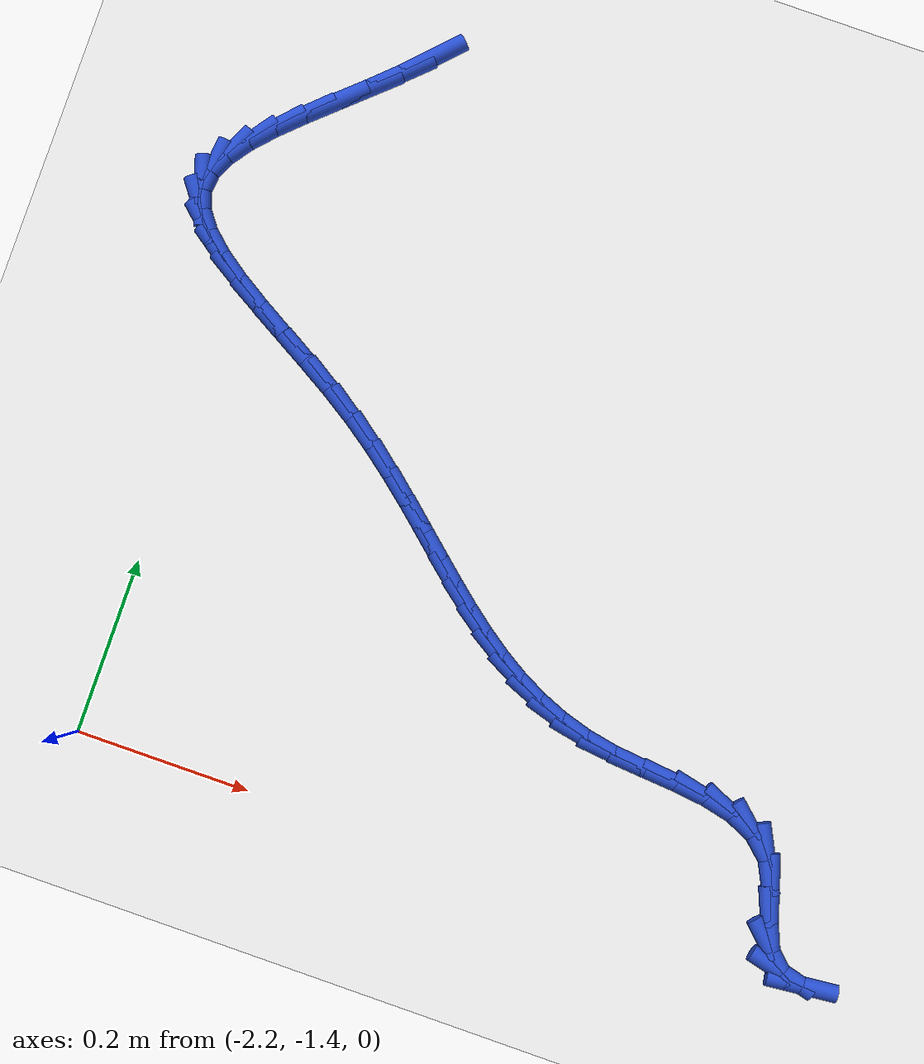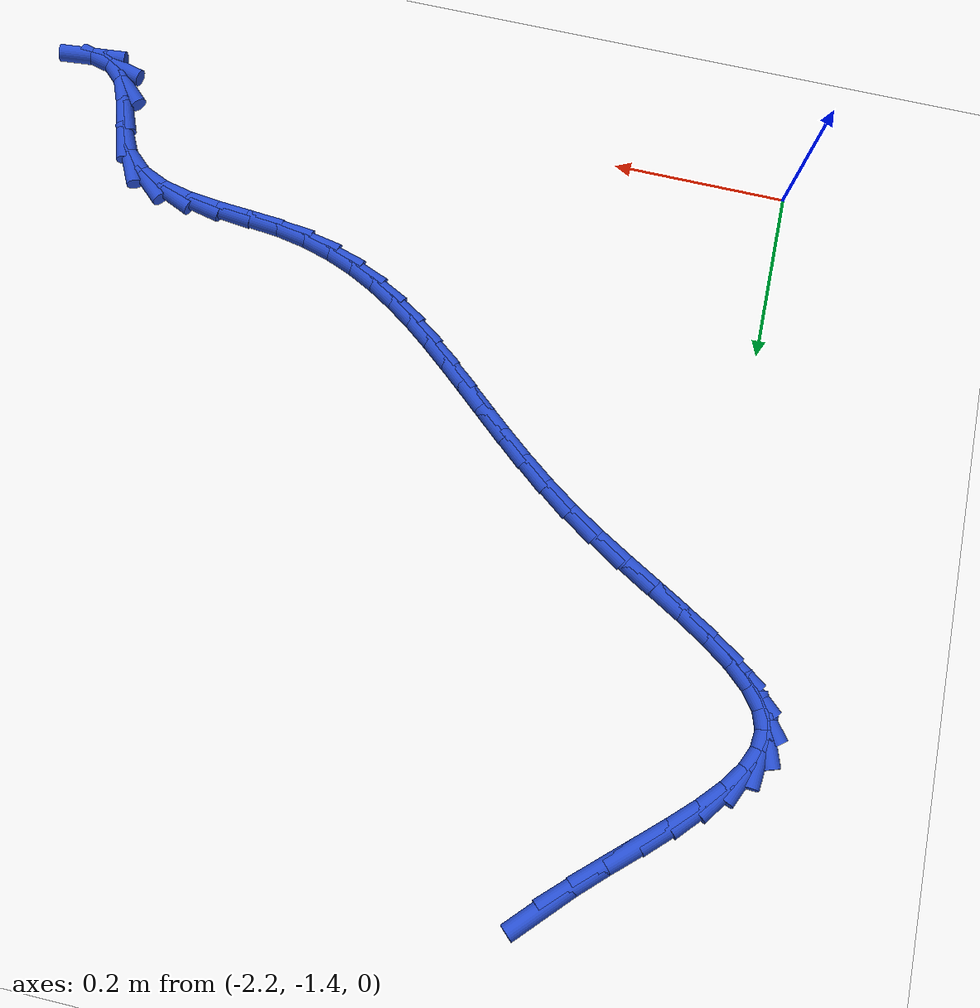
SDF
<sdf version="1.6">
 <world name="default">
  <model name="ground_plane">
   <static>1</static>
   <link name="link">
    <collision name="collision">
     <geometry><plane><normal>0 0 1</normal><size>100 100</size></plane></geometry>
     <surface><friction><ode><mu>100</mu><mu2>50</mu2></ode></friction></surface>
    </collision>
    <visual name="visual">
     <cast_shadows>0</cast_shadows>
     <geometry><plane><normal>0 0 1</normal><size>100 100</size></plane></geometry>
     <material>
      <script><uri>file://media/materials/scripts/gazebo.material</uri><name>Gazebo/WhiteGlow</name></script>
     </material>
    </visual>
   </link>
  </model>
  <model name="line">
   <link name="link_155">
    <pose>-2.0775299992769973 -0.5603262600297172 0.01 0 1.57 0.8064701238069668</pose>
    <collision name="collision">
     <geometry><cylinder><radius>0.01</radius><length>0.08</length></cylinder></geometry>
    </collision>
    <visual name="visual">
     <material>
      <script><name>Gazebo/Blue</name><uri>file://media/materials/scripts/gazebo.material</uri></script>
     </material>
     <geometry><cylinder><radius>0.01</radius><length>0.08</length></cylinder></geometry>
    </visual>
   </link>
   <link name="link_156">
    <pose>-2.1049394615594754 -0.588915908030535 0.01 0 1.57 0.7580136899996742</pose>
    <collision name="collision">
     <geometry><cylinder><radius>0.01</radius><length>0.08</length></cylinder></geometry>
    </collision>
    <visual name="visual">
     <material>
      <script><name>Gazebo/Blue</name><uri>file://media/materials/scripts/gazebo.material</uri></script>
     </material>
     <geometry><cylinder><radius>0.01</radius><length>0.08</length></cylinder></geometry>
    </visual>
   </link>
   <link name="link_157">
    <pose>-2.134192705329828 -0.6166093080165246 0.01 0 1.57 0.7348666892018985</pose>
    <collision name="collision">
     <geometry><cylinder><radius>0.01</radius><length>0.08</length></cylinder></geometry>
    </collision>
    <visual name="visual">
     <material>
      <script><name>Gazebo/Blue</name><uri>file://media/materials/scripts/gazebo.material</uri></script>
     </material>
     <geometry><cylinder><radius>0.01</radius><length>0.08</length></cylinder></geometry>
    </visual>
   </link>
   <link name="link_158">
    <pose>-2.1638618000826897 -0.6434218696730417 0.01 0 1.57 0.7358110743320213</pose>
    <collision name="collision">
     <geometry><cylinder><radius>0.01</radius><length>0.08</length></cylinder></geometry>
    </collision>
    <visual name="visual">
     <material>
      <script><name>Gazebo/Blue</name><uri>file://media/materials/scripts/gazebo.material</uri></script>
     </material>
     <geometry><cylinder><radius>0.01</radius><length>0.08</length></cylinder></geometry>
    </visual>
   </link>
   <link name="link_159">
    <pose>-2.192518815312694 -0.669369002685441 0.01 0 1.57 0.7635773972046103</pose>
    <collision name="collision">
     <geometry><cylinder><radius>0.01</radius><length>0.08</length></cylinder></geometry>
    </collision>
    <visual name="visual">
     <material>
      <script><name>Gazebo/Blue</name><uri>file://media/materials/scripts/gazebo.material</uri></script>
     </material>
     <geometry><cylinder><radius>0.01</radius><length>0.08</length></cylinder></geometry>
    </visual>
   </link>
   <link name="link_160">
    <pose>-2.218735820514471 -0.6944661167390759 0.01 0 1.57 0.826425882474019</pose>
    <collision name="collision">
     <geometry><cylinder><radius>0.01</radius><length>0.08</length></cylinder></geometry>
    </collision>
    <visual name="visual">
     <material>
      <script><name>Gazebo/Blue</name><uri>file://media/materials/scripts/gazebo.material</uri></script>
     </material>
     <geometry><cylinder><radius>0.01</radius><length>0.08</length></cylinder></geometry>
    </visual>
   </link>
   <link name="link_161">
    <pose>-2.241084885182658 -0.7187286215193021 0.01 0 1.57 0.9419019216957848</pose>
    <collision name="collision">
     <geometry><cylinder><radius>0.01</radius><length>0.08</length></cylinder></geometry>
    </collision>
    <visual name="visual">
     <material>
      <script><name>Gazebo/Blue</name><uri>file://media/materials/scripts/gazebo.material</uri></script>
     </material>
     <geometry><cylinder><radius>0.01</radius><length>0.08</length></cylinder></geometry>
    </visual>
   </link>
   <link name="link_162">
    <pose>-2.258138078811885 -0.7421719267114734 0.01 0 1.57 1.1427529300625427</pose>
    <collision name="collision">
     <geometry><cylinder><radius>0.01</radius><length>0.08</length></cylinder></geometry>
    </collision>
    <visual name="visual">
     <material>
      <script><name>Gazebo/Blue</name><uri>file://media/materials/scripts/gazebo.material</uri></script>
     </material>
     <geometry><cylinder><radius>0.01</radius><length>0.08</length></cylinder></geometry>
    </visual>
   </link>
   <link name="link_163">
    <pose>-2.268467470896786 -0.7648114420009444 0.01 0 1.57 1.471465410727295</pose>
    <collision name="collision">
     <geometry><cylinder><radius>0.01</radius><length>0.08</length></cylinder></geometry>
    </collision>
    <visual name="visual">
     <material>
      <script><name>Gazebo/Blue</name><uri>file://media/materials/scripts/gazebo.material</uri></script>
     </material>
     <geometry><cylinder><radius>0.01</radius><length>0.08</length></cylinder></geometry>
    </visual>
   </link>
   <link name="link_164">
    <pose>-2.2706451309319937 -0.7866625770730695 0.01 0 1.57 -1.2514424913709432</pose>
    <collision name="collision">
     <geometry><cylinder><radius>0.01</radius><length>0.08</length></cylinder></geometry>
    </collision>
    <visual name="visual">
     <material>
      <script><name>Gazebo/Blue</name><uri>file://media/materials/scripts/gazebo.material</uri></script>
     </material>
     <geometry><cylinder><radius>0.01</radius><length>0.08</length></cylinder></geometry>
    </visual>
   </link>
   <link name="link_165">
    <pose>-2.263666528177719 -0.8077668544742515 0.01 0 1.57 -0.9314942079304372</pose>
    <collision name="collision">
     <geometry><cylinder><radius>0.01</radius><length>0.08</length></cylinder></geometry>
    </collision>
    <visual name="visual">
     <material>
      <script><name>Gazebo/Blue</name><uri>file://media/materials/scripts/gazebo.material</uri></script>
     </material>
     <geometry><cylinder><radius>0.01</radius><length>0.08</length></cylinder></geometry>
    </visual>
   </link>
   <link name="link_166">
    <pose>-2.2484142110169296 -0.8282821809318109 0.01 0 1.57 -0.738049540357737</pose>
    <collision name="collision">
     <geometry><cylinder><radius>0.01</radius><length>0.08</length></cylinder></geometry>
    </collision>
    <visual name="visual">
     <material>
      <script><name>Gazebo/Blue</name><uri>file://media/materials/scripts/gazebo.material</uri></script>
     </material>
     <geometry><cylinder><radius>0.01</radius><length>0.08</length></cylinder></geometry>
    </visual>
   </link>
   <link name="link_167">
    <pose>-2.226296268785556 -0.8483988755147747 0.01 0 1.57 -0.6253128537483504</pose>
    <collision name="collision">
     <geometry><cylinder><radius>0.01</radius><length>0.08</length></cylinder></geometry>
    </collision>
    <visual name="visual">
     <material>
      <script><name>Gazebo/Blue</name><uri>file://media/materials/scripts/gazebo.material</uri></script>
     </material>
     <geometry><cylinder><radius>0.01</radius><length>0.08</length></cylinder></geometry>
    </visual>
   </link>
   <link name="link_168">
    <pose>-2.198720812929601 -0.8683072586557915 0.01 0 1.57 -0.5614333112837075</pose>
    <collision name="collision">
     <geometry><cylinder><radius>0.01</radius><length>0.08</length></cylinder></geometry>
    </collision>
    <visual name="visual">
     <material>
      <script><name>Gazebo/Blue</name><uri>file://media/materials/scripts/gazebo.material</uri></script>
     </material>
     <geometry><cylinder><radius>0.01</radius><length>0.08</length></cylinder></geometry>
    </visual>
   </link>
   <link name="link_169">
    <pose>-2.167095954895065 -0.8881976507875089 0.01 0 1.57 -0.5296871452448698</pose>
    <collision name="collision">
     <geometry><cylinder><radius>0.01</radius><length>0.08</length></cylinder></geometry>
    </collision>
    <visual name="visual">
     <material>
      <script><name>Gazebo/Blue</name><uri>file://media/materials/scripts/gazebo.material</uri></script>
     </material>
     <geometry><cylinder><radius>0.01</radius><length>0.08</length></cylinder></geometry>
    </visual>
   </link>
   <link name="link_170">
    <pose>-2.132829806127948 -0.908260372342576 0.01 0 1.57 -0.5221149038776058</pose>
    <collision name="collision">
     <geometry><cylinder><radius>0.01</radius><length>0.08</length></cylinder></geometry>
    </collision>
    <visual name="visual">
     <material>
      <script><name>Gazebo/Blue</name><uri>file://media/materials/scripts/gazebo.material</uri></script>
     </material>
     <geometry><cylinder><radius>0.01</radius><length>0.08</length></cylinder></geometry>
    </visual>
   </link>
   <link name="link_171">
    <pose>-2.0973304780742525 -0.9286857437536407 0.01 0 1.57 -0.5359050347503358</pose>
    <collision name="collision">
     <geometry><cylinder><radius>0.01</radius><length>0.08</length></cylinder></geometry>
    </collision>
    <visual name="visual">
     <material>
      <script><name>Gazebo/Blue</name><uri>file://media/materials/scripts/gazebo.material</uri></script>
     </material>
     <geometry><cylinder><radius>0.01</radius><length>0.08</length></cylinder></geometry>
    </visual>
   </link>
   <link name="link_172">
    <pose>-2.0620060821799777 -0.9496640854533516 0.01 0 1.57 -0.5717404615093121</pose>
    <collision name="collision">
     <geometry><cylinder><radius>0.01</radius><length>0.08</length></cylinder></geometry>
    </collision>
    <visual name="visual">
     <material>
      <script><name>Gazebo/Blue</name><uri>file://media/materials/scripts/gazebo.material</uri></script>
     </material>
     <geometry><cylinder><radius>0.01</radius><length>0.08</length></cylinder></geometry>
    </visual>
   </link>
   <link name="link_173">
    <pose>-2.028252033818595 -0.9713823451315441 0.01 0 1.57 -0.6200068170889967</pose>
    <collision name="collision">
     <geometry><cylinder><radius>0.01</radius><length>0.08</length></cylinder></geometry>
    </collision>
    <visual name="visual">
     <material>
      <script><name>Gazebo/Blue</name><uri>file://media/materials/scripts/gazebo.material</uri></script>
     </material>
     <geometry><cylinder><radius>0.01</radius><length>0.08</length></cylinder></geometry>
    </visual>
   </link>
   <link name="link_174">
    <pose>-1.9967851107858208 -0.9938471887407889 0.01 0 1.57 -0.6616725453917283</pose>
    <collision name="collision">
     <geometry><cylinder><radius>0.01</radius><length>0.08</length></cylinder></geometry>
    </collision>
    <visual name="visual">
     <material>
      <script><name>Gazebo/Blue</name><uri>file://media/materials/scripts/gazebo.material</uri></script>
     </material>
     <geometry><cylinder><radius>0.01</radius><length>0.08</length></cylinder></geometry>
    </visual>
   </link>
   <link name="link_175">
    <pose>-1.96731540461678 -1.0167978535590723 0.01 0 1.57 -0.6936945866435396</pose>
    <collision name="collision">
     <geometry><cylinder><radius>0.01</radius><length>0.08</length></cylinder></geometry>
    </collision>
    <visual name="visual">
     <material>
      <script><name>Gazebo/Blue</name><uri>file://media/materials/scripts/gazebo.material</uri></script>
     </material>
     <geometry><cylinder><radius>0.01</radius><length>0.08</length></cylinder></geometry>
    </visual>
   </link>
   <link name="link_176">
    <pose>-1.9394714859530346 -1.0399519206390306 0.01 0 1.57 -0.714751054277779</pose>
    <collision name="collision">
     <geometry><cylinder><radius>0.01</radius><length>0.08</length></cylinder></geometry>
    </collision>
    <visual name="visual">
     <material>
      <script><name>Gazebo/Blue</name><uri>file://media/materials/scripts/gazebo.material</uri></script>
     </material>
     <geometry><cylinder><radius>0.01</radius><length>0.08</length></cylinder></geometry>
    </visual>
   </link>
   <link name="link_177">
    <pose>-1.9128819254361467 -1.0630269710332998 0.01 0 1.57 -0.7236633746553341</pose>
    <collision name="collision">
     <geometry><cylinder><radius>0.01</radius><length>0.08</length></cylinder></geometry>
    </collision>
    <visual name="visual">
     <material>
      <script><name>Gazebo/Blue</name><uri>file://media/materials/scripts/gazebo.material</uri></script>
     </material>
     <geometry><cylinder><radius>0.01</radius><length>0.08</length></cylinder></geometry>
    </visual>
   </link>
   <link name="link_178">
    <pose>-1.8871752937076773 -1.0857405857945157 0.01 0 1.57 -0.7193696869495574</pose>
    <collision name="collision">
     <geometry><cylinder><radius>0.01</radius><length>0.08</length></cylinder></geometry>
    </collision>
    <visual name="visual">
     <material>
      <script><name>Gazebo/Blue</name><uri>file://media/materials/scripts/gazebo.material</uri></script>
     </material>
     <geometry><cylinder><radius>0.01</radius><length>0.08</length></cylinder></geometry>
    </visual>
   </link>
   <link name="link_179">
    <pose>-1.861980161409189 -1.1078103459753146 0.01 0 1.57 -0.7009308249089289</pose>
    <collision name="collision">
     <geometry><cylinder><radius>0.01</radius><length>0.08</length></cylinder></geometry>
    </collision>
    <visual name="visual">
     <material>
      <script><name>Gazebo/Blue</name><uri>file://media/materials/scripts/gazebo.material</uri></script>
     </material>
     <geometry><cylinder><radius>0.01</radius><length>0.08</length></cylinder></geometry>
    </visual>
   </link>
   <link name="link_180">
    <pose>-1.8369250991822428 -1.1289538326283324 0.01 0 1.57 -0.6676027504304239</pose>
    <collision name="collision">
     <geometry><cylinder><radius>0.01</radius><length>0.08</length></cylinder></geometry>
    </collision>
    <visual name="visual">
     <material>
      <script><name>Gazebo/Blue</name><uri>file://media/materials/scripts/gazebo.material</uri></script>
     </material>
     <geometry><cylinder><radius>0.01</radius><length>0.08</length></cylinder></geometry>
    </visual>
   </link>
   <link name="link_181">
    <pose>-1.8116386776684006 -1.148888626806206 0.01 0 1.57 -0.6190050896152614</pose>
    <collision name="collision">
     <geometry><cylinder><radius>0.01</radius><length>0.08</length></cylinder></geometry>
    </collision>
    <visual name="visual">
     <material>
      <script><name>Gazebo/Blue</name><uri>file://media/materials/scripts/gazebo.material</uri></script>
     </material>
     <geometry><cylinder><radius>0.01</radius><length>0.08</length></cylinder></geometry>
    </visual>
   </link>
   <link name="link_182">
    <pose>-1.7857494675092247 -1.1673323095615697 0.01 0 1.57 -0.5553943120992442</pose>
    <collision name="collision">
     <geometry><cylinder><radius>0.01</radius><length>0.08</length></cylinder></geometry>
    </collision>
    <visual name="visual">
     <material>
      <script><name>Gazebo/Blue</name><uri>file://media/materials/scripts/gazebo.material</uri></script>
     </material>
     <geometry><cylinder><radius>0.01</radius><length>0.08</length></cylinder></geometry>
    </visual>
   </link>
   <link name="link_183">
    <pose>-1.7588860393462764 -1.1840024619470608 0.01 0 1.57 -0.4779968539709024</pose>
    <collision name="collision">
     <geometry><cylinder><radius>0.01</radius><length>0.08</length></cylinder></geometry>
    </collision>
    <visual name="visual">
     <material>
      <script><name>Gazebo/Blue</name><uri>file://media/materials/scripts/gazebo.material</uri></script>
     </material>
     <geometry><cylinder><radius>0.01</radius><length>0.08</length></cylinder></geometry>
    </visual>
   </link>
   <link name="link_184">
    <pose>-1.7306769638211181 -1.1986166650153152 0.01 0 1.57 -0.3892720741588566</pose>
    <collision name="collision">
     <geometry><cylinder><radius>0.01</radius><length>0.08</length></cylinder></geometry>
    </collision>
    <visual name="visual">
     <material>
      <script><name>Gazebo/Blue</name><uri>file://media/materials/scripts/gazebo.material</uri></script>
     </material>
     <geometry><cylinder><radius>0.01</radius><length>0.08</length></cylinder></geometry>
    </visual>
   </link>
   <link name="link_185">
    <pose>-1.7007508115753107 -1.2108924998189683 0.01 0 1.57 -0.2929076211017467</pose>
    <collision name="collision">
     <geometry><cylinder><radius>0.01</radius><length>0.08</length></cylinder></geometry>
    </collision>
    <visual name="visual">
     <material>
      <script><name>Gazebo/Blue</name><uri>file://media/materials/scripts/gazebo.material</uri></script>
     </material>
     <geometry><cylinder><radius>0.01</radius><length>0.08</length></cylinder></geometry>
    </visual>
   </link>
   <link name="link_186">
    <pose>-1.6687361532504161 -1.2205475474106569 0.01 0 1.57 -0.19340200409095243</pose>
    <collision name="collision">
     <geometry><cylinder><radius>0.01</radius><length>0.08</length></cylinder></geometry>
    </collision>
    <visual name="visual">
     <material>
      <script><name>Gazebo/Blue</name><uri>file://media/materials/scripts/gazebo.material</uri></script>
     </material>
     <geometry><cylinder><radius>0.01</radius><length>0.08</length></cylinder></geometry>
    </visual>
   </link>
   <link name="link_187">
    <pose>-1.6342615653573076 -1.2272993952635034 0.01 0 1.57 -0.10815150378414311</pose>
    <collision name="collision">
     <geometry><cylinder><radius>0.01</radius><length>0.08</length></cylinder></geometry>
    </collision>
    <visual name="visual">
     <material>
      <script><name>Gazebo/Blue</name><uri>file://media/materials/scripts/gazebo.material</uri></script>
     </material>
     <geometry><cylinder><radius>0.01</radius><length>0.08</length></cylinder></geometry>
    </visual>
   </link>
   <link name="link_188">
    <pose>-1.597358343415434 -1.2313061684783015 0.01 0 1.57 -0.08061993582967994</pose>
    <collision name="collision">
     <geometry><cylinder><radius>0.01</radius><length>0.08</length></cylinder></geometry>
    </collision>
    <visual name="visual">
     <material>
      <script><name>Gazebo/Blue</name><uri>file://media/materials/scripts/gazebo.material</uri></script>
     </material>
     <geometry><cylinder><radius>0.01</radius><length>0.08</length></cylinder></geometry>
    </visual>
   </link>
   <link name="link_189">
    <pose>-1.5595521750798305 -1.2343607199739839 0.01 0 1.57 -0.11551612211069585</pose>
    <collision name="collision">
     <geometry><cylinder><radius>0.01</radius><length>0.08</length></cylinder></geometry>
    </collision>
    <visual name="visual">
     <material>
      <script><name>Gazebo/Blue</name><uri>file://media/materials/scripts/gazebo.material</uri></script>
     </material>
     <geometry><cylinder><radius>0.01</radius><length>0.08</length></cylinder></geometry>
    </visual>
   </link>
   <link name="link_190">
    <pose>-1.5227153025606086 -1.2386350015406584 0.01 0 1.57 -0.22179073242821593</pose>
    <collision name="collision">
     <geometry><cylinder><radius>0.01</radius><length>0.08</length></cylinder></geometry>
    </collision>
    <visual name="visual">
     <material>
      <script><name>Gazebo/Blue</name><uri>file://media/materials/scripts/gazebo.material</uri></script>
     </material>
     <geometry><cylinder><radius>0.01</radius><length>0.08</length></cylinder></geometry>
    </visual>
   </link>
   <link name="link_191">
    <pose>-1.4887199680678798 -1.2463009649684345 0.01 0 1.57 -0.4243552122047385</pose>
    <collision name="collision">
     <geometry><cylinder><radius>0.01</radius><length>0.08</length></cylinder></geometry>
    </collision>
    <visual name="visual">
     <material>
      <script><name>Gazebo/Blue</name><uri>file://media/materials/scripts/gazebo.material</uri></script>
     </material>
     <geometry><cylinder><radius>0.01</radius><length>0.08</length></cylinder></geometry>
    </visual>
   </link>
   <link name="link_192">
    <pose>-1.4594384138117573 -1.2595305620474198 0.01 0 1.57 -0.7457871714428387</pose>
    <collision name="collision">
     <geometry><cylinder><radius>0.01</radius><length>0.08</length></cylinder></geometry>
    </collision>
    <visual name="visual">
     <material>
      <script><name>Gazebo/Blue</name><uri>file://media/materials/scripts/gazebo.material</uri></script>
     </material>
     <geometry><cylinder><radius>0.01</radius><length>0.08</length></cylinder></geometry>
    </visual>
   </link>
   <link name="link_193">
    <pose>-1.4367428820023533 -1.2804957445677232 0.01 0 1.57 -1.1143156621230113</pose>
    <collision name="collision">
     <geometry><cylinder><radius>0.01</radius><length>0.08</length></cylinder></geometry>
    </collision>
    <visual name="visual">
     <material>
      <script><name>Gazebo/Blue</name><uri>file://media/materials/scripts/gazebo.material</uri></script>
     </material>
     <geometry><cylinder><radius>0.01</radius><length>0.08</length></cylinder></geometry>
    </visual>
   </link>
   <link name="link_194">
    <pose>-1.4219552984510921 -1.3106085360638728 0.01 0 1.57 -1.2747558674477777</pose>
    <collision name="collision">
     <geometry><cylinder><radius>0.01</radius><length>0.08</length></cylinder></geometry>
    </collision>
    <visual name="visual">
     <material>
      <script><name>Gazebo/Blue</name><uri>file://media/materials/scripts/gazebo.material</uri></script>
     </material>
     <geometry><cylinder><radius>0.01</radius><length>0.08</length></cylinder></geometry>
    </visual>
   </link>
   <link name="link_195">
    <pose>-1.4115793943036943 -1.3446275470954516 0.01 0 1.57 -1.1827391749013432</pose>
    <collision name="collision">
     <geometry><cylinder><radius>0.01</radius><length>0.08</length></cylinder></geometry>
    </collision>
    <visual name="visual">
     <material>
      <script><name>Gazebo/Blue</name><uri>file://media/materials/scripts/gazebo.material</uri></script>
     </material>
     <geometry><cylinder><radius>0.01</radius><length>0.08</length></cylinder></geometry>
    </visual>
   </link>
   <link name="link_196">
    <pose>-1.3996259529599806 -1.3738688934536953 0.01 0 1.57 -0.7661049104465513</pose>
    <collision name="collision">
     <geometry><cylinder><radius>0.01</radius><length>0.08</length></cylinder></geometry>
    </collision>
    <visual name="visual">
     <material>
      <script><name>Gazebo/Blue</name><uri>file://media/materials/scripts/gazebo.material</uri></script>
     </material>
     <geometry><cylinder><radius>0.01</radius><length>0.08</length></cylinder></geometry>
    </visual>
   </link>
   <link name="link_197">
    <pose>-1.3813180895871926 -1.391483607448965 0.01 0 1.57 -0.25224510820280605</pose>
    <collision name="collision">
     <geometry><cylinder><radius>0.01</radius><length>0.08</length></cylinder></geometry>
    </collision>
    <visual name="visual">
     <material>
      <script><name>Gazebo/Blue</name><uri>file://media/materials/scripts/gazebo.material</uri></script>
     </material>
     <geometry><cylinder><radius>0.01</radius><length>0.08</length></cylinder></geometry>
    </visual>
   </link>
   <link name="link_198">
    <pose>-1.356654654158092 -1.3978402326797745 0.01 0 1.57 0.0930241562532281</pose>
    <collision name="collision">
     <geometry><cylinder><radius>0.01</radius><length>0.08</length></cylinder></geometry>
    </collision>
    <visual name="visual">
     <material>
      <script><name>Gazebo/Blue</name><uri>file://media/materials/scripts/gazebo.material</uri></script>
     </material>
     <geometry><cylinder><radius>0.01</radius><length>0.08</length></cylinder></geometry>
    </visual>
   </link>
  </model>
 </world>
</sdf>
